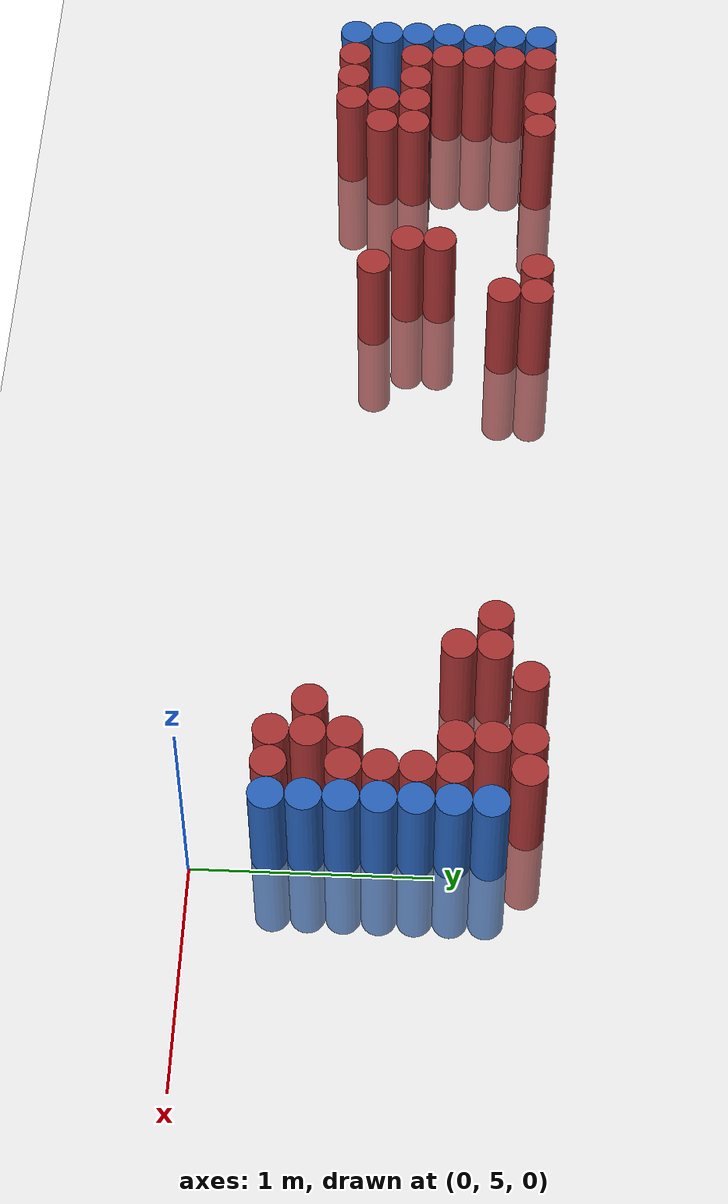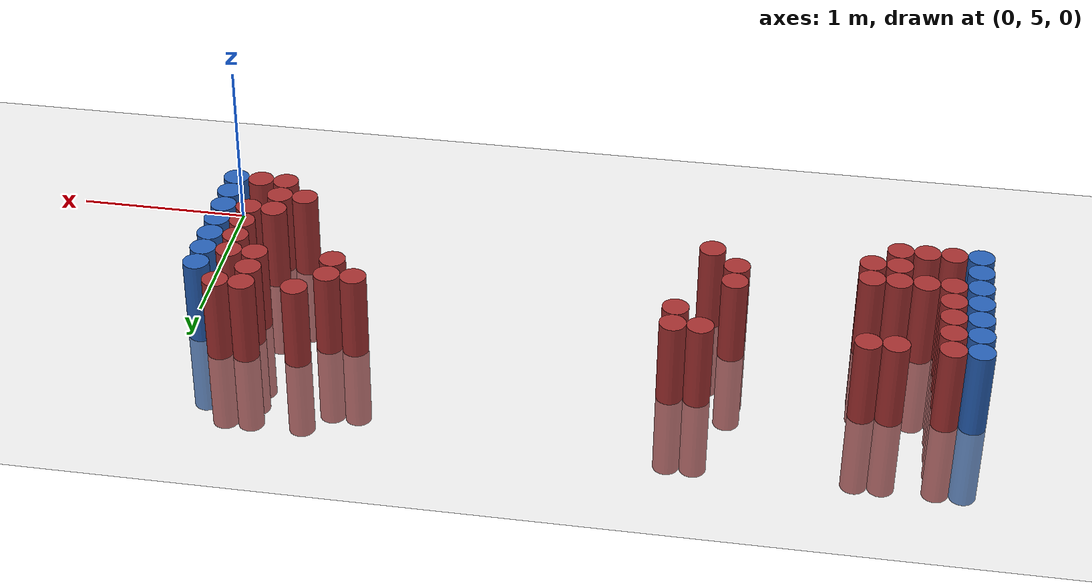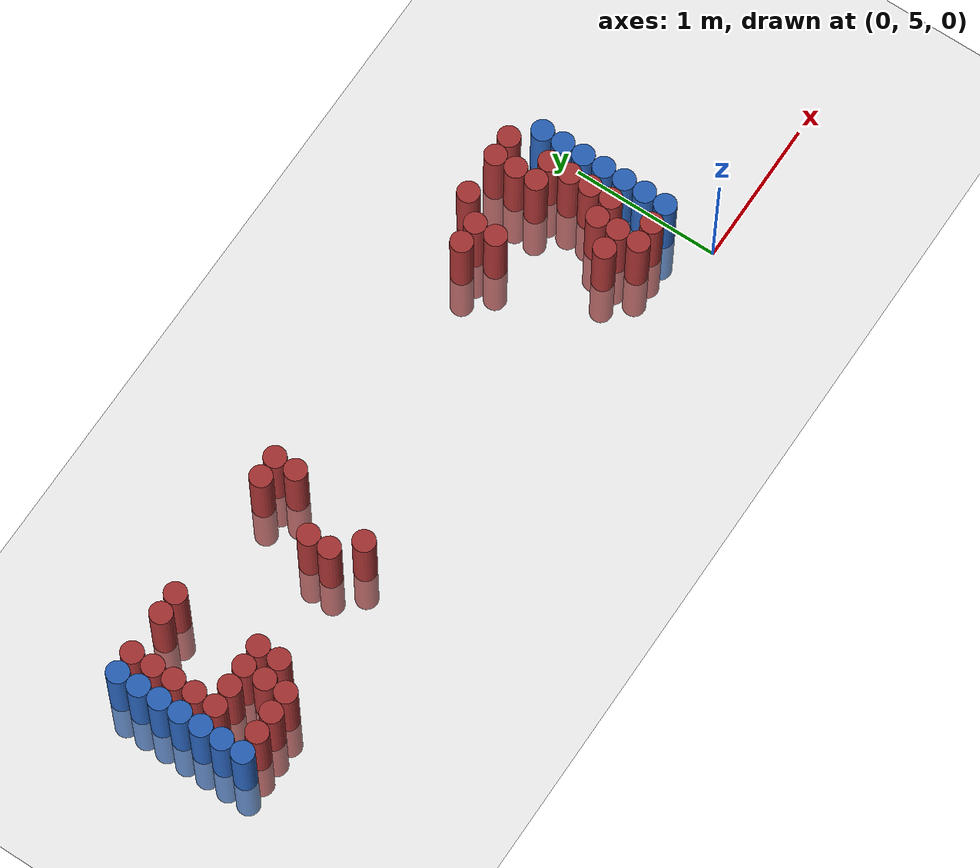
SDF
<sdf version="1.6">
 <world name="default">
  <model name="ground_plane">
   <static>1</static>
   <link name="link">
    <collision name="collision">
     <geometry><plane><normal>0 0 1</normal><size>100 100</size></plane></geometry>
     <surface><friction><ode><mu>100</mu><mu2>50</mu2></ode></friction></surface>
    </collision>
    <visual name="visual">
     <cast_shadows>0</cast_shadows>
     <geometry><plane><normal>0 0 1</normal><size>100 100</size></plane></geometry>
     <material>
      <script><uri>file://media/materials/scripts/gazebo.material</uri><name>Gazebo/Grey</name></script>
     </material>
    </visual>
   </link>
  </model>
  <model name="unit_cylinder_98">
   <static>1</static>
   <pose>-4.425000 5.475000 0.000000 0.000000 0.000000 0.000000</pose>
   <link name="link">
    <inertial>
     <mass>1</mass>
     <inertia><ixx>0.145833</ixx><ixy>0</ixy><ixz>0</ixz><iyy>0.145833</iyy><iyz>0</iyz><izz>0.125</izz></inertia>
    </inertial>
    <collision name="collision">
     <geometry><cylinder><radius>0.075000</radius><length>1</length></cylinder></geometry>
    </collision>
    <visual name="visual">
     <geometry><cylinder><radius>0.075000</radius><length>1</length></cylinder></geometry>
     <material>
      <ambient>0.152000 0.379000 0.720000 1</ambient>
      <diffuse>0.152000 0.379000 0.720000 1</diffuse>
     </material>
     <material>
      <script><name>Gazebo/Grey</name><uri>file://media/materials/scripts/gazebo.material</uri></script>
     </material>
    </visual>
   </link>
  </model>
  <model name="unit_cylinder_99">
   <static>1</static>
   <pose>-4.425000 5.625000 0.000000 0.000000 0.000000 0.000000</pose>
   <link name="link">
    <inertial>
     <mass>1</mass>
     <inertia><ixx>0.145833</ixx><ixy>0</ixy><ixz>0</ixz><iyy>0.145833</iyy><iyz>0</iyz><izz>0.125</izz></inertia>
    </inertial>
    <collision name="collision">
     <geometry><cylinder><radius>0.075000</radius><length>1</length></cylinder></geometry>
    </collision>
    <visual name="visual">
     <geometry><cylinder><radius>0.075000</radius><length>1</length></cylinder></geometry>
     <material>
      <ambient>0.152000 0.379000 0.720000 1</ambient>
      <diffuse>0.152000 0.379000 0.720000 1</diffuse>
     </material>
     <material>
      <script><name>Gazebo/Grey</name><uri>file://media/materials/scripts/gazebo.material</uri></script>
     </material>
    </visual>
   </link>
  </model>
  <model name="unit_cylinder_100">
   <static>1</static>
   <pose>-4.425000 5.775000 0.000000 0.000000 0.000000 0.000000</pose>
   <link name="link">
    <inertial>
     <mass>1</mass>
     <inertia><ixx>0.145833</ixx><ixy>0</ixy><ixz>0</ixz><iyy>0.145833</iyy><iyz>0</iyz><izz>0.125</izz></inertia>
    </inertial>
    <collision name="collision">
     <geometry><cylinder><radius>0.075000</radius><length>1</length></cylinder></geometry>
    </collision>
    <visual name="visual">
     <geometry><cylinder><radius>0.075000</radius><length>1</length></cylinder></geometry>
     <material>
      <ambient>0.152000 0.379000 0.720000 1</ambient>
      <diffuse>0.152000 0.379000 0.720000 1</diffuse>
     </material>
     <material>
      <script><name>Gazebo/Grey</name><uri>file://media/materials/scripts/gazebo.material</uri></script>
     </material>
    </visual>
   </link>
  </model>
  <model name="unit_cylinder_101">
   <static>1</static>
   <pose>-4.425000 5.925000 0.000000 0.000000 0.000000 0.000000</pose>
   <link name="link">
    <inertial>
     <mass>1</mass>
     <inertia><ixx>0.145833</ixx><ixy>0</ixy><ixz>0</ixz><iyy>0.145833</iyy><iyz>0</iyz><izz>0.125</izz></inertia>
    </inertial>
    <collision name="collision">
     <geometry><cylinder><radius>0.075000</radius><length>1</length></cylinder></geometry>
    </collision>
    <visual name="visual">
     <geometry><cylinder><radius>0.075000</radius><length>1</length></cylinder></geometry>
     <material>
      <ambient>0.152000 0.379000 0.720000 1</ambient>
      <diffuse>0.152000 0.379000 0.720000 1</diffuse>
     </material>
     <material>
      <script><name>Gazebo/Grey</name><uri>file://media/materials/scripts/gazebo.material</uri></script>
     </material>
    </visual>
   </link>
  </model>
  <model name="unit_cylinder_102">
   <static>1</static>
   <pose>-4.425000 6.075000 0.000000 0.000000 0.000000 0.000000</pose>
   <link name="link">
    <inertial>
     <mass>1</mass>
     <inertia><ixx>0.145833</ixx><ixy>0</ixy><ixz>0</ixz><iyy>0.145833</iyy><iyz>0</iyz><izz>0.125</izz></inertia>
    </inertial>
    <collision name="collision">
     <geometry><cylinder><radius>0.075000</radius><length>1</length></cylinder></geometry>
    </collision>
    <visual name="visual">
     <geometry><cylinder><radius>0.075000</radius><length>1</length></cylinder></geometry>
     <material>
      <ambient>0.152000 0.379000 0.720000 1</ambient>
      <diffuse>0.152000 0.379000 0.720000 1</diffuse>
     </material>
     <material>
      <script><name>Gazebo/Grey</name><uri>file://media/materials/scripts/gazebo.material</uri></script>
     </material>
    </visual>
   </link>
  </model>
  <model name="unit_cylinder_103">
   <static>1</static>
   <pose>-4.425000 6.225000 0.000000 0.000000 0.000000 0.000000</pose>
   <link name="link">
    <inertial>
     <mass>1</mass>
     <inertia><ixx>0.145833</ixx><ixy>0</ixy><ixz>0</ixz><iyy>0.145833</iyy><iyz>0</iyz><izz>0.125</izz></inertia>
    </inertial>
    <collision name="collision">
     <geometry><cylinder><radius>0.075000</radius><length>1</length></cylinder></geometry>
    </collision>
    <visual name="visual">
     <geometry><cylinder><radius>0.075000</radius><length>1</length></cylinder></geometry>
     <material>
      <ambient>0.152000 0.379000 0.720000 1</ambient>
      <diffuse>0.152000 0.379000 0.720000 1</diffuse>
     </material>
     <material>
      <script><name>Gazebo/Grey</name><uri>file://media/materials/scripts/gazebo.material</uri></script>
     </material>
    </visual>
   </link>
  </model>
  <model name="unit_cylinder_104">
   <static>1</static>
   <pose>-4.425000 6.375000 0.000000 0.000000 0.000000 0.000000</pose>
   <link name="link">
    <inertial>
     <mass>1</mass>
     <inertia><ixx>0.145833</ixx><ixy>0</ixy><ixz>0</ixz><iyy>0.145833</iyy><iyz>0</iyz><izz>0.125</izz></inertia>
    </inertial>
    <collision name="collision">
     <geometry><cylinder><radius>0.075000</radius><length>1</length></cylinder></geometry>
    </collision>
    <visual name="visual">
     <geometry><cylinder><radius>0.075000</radius><length>1</length></cylinder></geometry>
     <material>
      <ambient>0.152000 0.379000 0.720000 1</ambient>
      <diffuse>0.152000 0.379000 0.720000 1</diffuse>
     </material>
     <material>
      <script><name>Gazebo/Grey</name><uri>file://media/materials/scripts/gazebo.material</uri></script>
     </material>
    </visual>
   </link>
  </model>
  <model name="unit_cylinder_127">
   <static>1</static>
   <pose>-4.275000 5.475000 0.000000 0.000000 0.000000 0.000000</pose>
   <link name="link">
    <inertial>
     <mass>1</mass>
     <inertia><ixx>0.145833</ixx><ixy>0</ixy><ixz>0</ixz><iyy>0.145833</iyy><iyz>0</iyz><izz>0.125</izz></inertia>
    </inertial>
    <collision name="collision">
     <geometry><cylinder><radius>0.075000</radius><length>1</length></cylinder></geometry>
    </collision>
    <visual name="visual">
     <geometry><cylinder><radius>0.075000</radius><length>1</length></cylinder></geometry>
     <material>
      <ambient>0.648000 0.192000 0.192000 1</ambient>
      <diffuse>0.648000 0.192000 0.192000 1</diffuse>
     </material>
     <material>
      <script><name>Gazebo/Grey</name><uri>file://media/materials/scripts/gazebo.material</uri></script>
     </material>
    </visual>
   </link>
  </model>
  <model name="unit_cylinder_128">
   <static>1</static>
   <pose>-4.275000 5.775000 0.000000 0.000000 0.000000 0.000000</pose>
   <link name="link">
    <inertial>
     <mass>1</mass>
     <inertia><ixx>0.145833</ixx><ixy>0</ixy><ixz>0</ixz><iyy>0.145833</iyy><iyz>0</iyz><izz>0.125</izz></inertia>
    </inertial>
    <collision name="collision">
     <geometry><cylinder><radius>0.075000</radius><length>1</length></cylinder></geometry>
    </collision>
    <visual name="visual">
     <geometry><cylinder><radius>0.075000</radius><length>1</length></cylinder></geometry>
     <material>
      <ambient>0.648000 0.192000 0.192000 1</ambient>
      <diffuse>0.648000 0.192000 0.192000 1</diffuse>
     </material>
     <material>
      <script><name>Gazebo/Grey</name><uri>file://media/materials/scripts/gazebo.material</uri></script>
     </material>
    </visual>
   </link>
  </model>
  <model name="unit_cylinder_129">
   <static>1</static>
   <pose>-4.275000 5.925000 0.000000 0.000000 0.000000 0.000000</pose>
   <link name="link">
    <inertial>
     <mass>1</mass>
     <inertia><ixx>0.145833</ixx><ixy>0</ixy><ixz>0</ixz><iyy>0.145833</iyy><iyz>0</iyz><izz>0.125</izz></inertia>
    </inertial>
    <collision name="collision">
     <geometry><cylinder><radius>0.075000</radius><length>1</length></cylinder></geometry>
    </collision>
    <visual name="visual">
     <geometry><cylinder><radius>0.075000</radius><length>1</length></cylinder></geometry>
     <material>
      <ambient>0.648000 0.192000 0.192000 1</ambient>
      <diffuse>0.648000 0.192000 0.192000 1</diffuse>
     </material>
     <material>
      <script><name>Gazebo/Grey</name><uri>file://media/materials/scripts/gazebo.material</uri></script>
     </material>
    </visual>
   </link>
  </model>
  <model name="unit_cylinder_130">
   <static>1</static>
   <pose>-4.275000 6.075000 0.000000 0.000000 0.000000 0.000000</pose>
   <link name="link">
    <inertial>
     <mass>1</mass>
     <inertia><ixx>0.145833</ixx><ixy>0</ixy><ixz>0</ixz><iyy>0.145833</iyy><iyz>0</iyz><izz>0.125</izz></inertia>
    </inertial>
    <collision name="collision">
     <geometry><cylinder><radius>0.075000</radius><length>1</length></cylinder></geometry>
    </collision>
    <visual name="visual">
     <geometry><cylinder><radius>0.075000</radius><length>1</length></cylinder></geometry>
     <material>
      <ambient>0.648000 0.192000 0.192000 1</ambient>
      <diffuse>0.648000 0.192000 0.192000 1</diffuse>
     </material>
     <material>
      <script><name>Gazebo/Grey</name><uri>file://media/materials/scripts/gazebo.material</uri></script>
     </material>
    </visual>
   </link>
  </model>
  <model name="unit_cylinder_131">
   <static>1</static>
   <pose>-4.275000 6.225000 0.000000 0.000000 0.000000 0.000000</pose>
   <link name="link">
    <inertial>
     <mass>1</mass>
     <inertia><ixx>0.145833</ixx><ixy>0</ixy><ixz>0</ixz><iyy>0.145833</iyy><iyz>0</iyz><izz>0.125</izz></inertia>
    </inertial>
    <collision name="collision">
     <geometry><cylinder><radius>0.075000</radius><length>1</length></cylinder></geometry>
    </collision>
    <visual name="visual">
     <geometry><cylinder><radius>0.075000</radius><length>1</length></cylinder></geometry>
     <material>
      <ambient>0.648000 0.192000 0.192000 1</ambient>
      <diffuse>0.648000 0.192000 0.192000 1</diffuse>
     </material>
     <material>
      <script><name>Gazebo/Grey</name><uri>file://media/materials/scripts/gazebo.material</uri></script>
     </material>
    </visual>
   </link>
  </model>
  <model name="unit_cylinder_132">
   <static>1</static>
   <pose>-4.275000 6.375000 0.000000 0.000000 0.000000 0.000000</pose>
   <link name="link">
    <inertial>
     <mass>1</mass>
     <inertia><ixx>0.145833</ixx><ixy>0</ixy><ixz>0</ixz><iyy>0.145833</iyy><iyz>0</iyz><izz>0.125</izz></inertia>
    </inertial>
    <collision name="collision">
     <geometry><cylinder><radius>0.075000</radius><length>1</length></cylinder></geometry>
    </collision>
    <visual name="visual">
     <geometry><cylinder><radius>0.075000</radius><length>1</length></cylinder></geometry>
     <material>
      <ambient>0.648000 0.192000 0.192000 1</ambient>
      <diffuse>0.648000 0.192000 0.192000 1</diffuse>
     </material>
     <material>
      <script><name>Gazebo/Grey</name><uri>file://media/materials/scripts/gazebo.material</uri></script>
     </material>
    </visual>
   </link>
  </model>
  <model name="unit_cylinder_143">
   <static>1</static>
   <pose>-4.125000 5.475000 0.000000 0.000000 0.000000 0.000000</pose>
   <link name="link">
    <inertial>
     <mass>1</mass>
     <inertia><ixx>0.145833</ixx><ixy>0</ixy><ixz>0</ixz><iyy>0.145833</iyy><iyz>0</iyz><izz>0.125</izz></inertia>
    </inertial>
    <collision name="collision">
     <geometry><cylinder><radius>0.075000</radius><length>1</length></cylinder></geometry>
    </collision>
    <visual name="visual">
     <geometry><cylinder><radius>0.075000</radius><length>1</length></cylinder></geometry>
     <material>
      <ambient>0.648000 0.192000 0.192000 1</ambient>
      <diffuse>0.648000 0.192000 0.192000 1</diffuse>
     </material>
     <material>
      <script><name>Gazebo/Grey</name><uri>file://media/materials/scripts/gazebo.material</uri></script>
     </material>
    </visual>
   </link>
  </model>
  <model name="unit_cylinder_144">
   <static>1</static>
   <pose>-4.125000 5.775000 0.000000 0.000000 0.000000 0.000000</pose>
   <link name="link">
    <inertial>
     <mass>1</mass>
     <inertia><ixx>0.145833</ixx><ixy>0</ixy><ixz>0</ixz><iyy>0.145833</iyy><iyz>0</iyz><izz>0.125</izz></inertia>
    </inertial>
    <collision name="collision">
     <geometry><cylinder><radius>0.075000</radius><length>1</length></cylinder></geometry>
    </collision>
    <visual name="visual">
     <geometry><cylinder><radius>0.075000</radius><length>1</length></cylinder></geometry>
     <material>
      <ambient>0.648000 0.192000 0.192000 1</ambient>
      <diffuse>0.648000 0.192000 0.192000 1</diffuse>
     </material>
     <material>
      <script><name>Gazebo/Grey</name><uri>file://media/materials/scripts/gazebo.material</uri></script>
     </material>
    </visual>
   </link>
  </model>
  <model name="unit_cylinder_153">
   <static>1</static>
   <pose>-3.975000 5.475000 0.000000 0.000000 0.000000 0.000000</pose>
   <link name="link">
    <inertial>
     <mass>1</mass>
     <inertia><ixx>0.145833</ixx><ixy>0</ixy><ixz>0</ixz><iyy>0.145833</iyy><iyz>0</iyz><izz>0.125</izz></inertia>
    </inertial>
    <collision name="collision">
     <geometry><cylinder><radius>0.075000</radius><length>1</length></cylinder></geometry>
    </collision>
    <visual name="visual">
     <geometry><cylinder><radius>0.075000</radius><length>1</length></cylinder></geometry>
     <material>
      <ambient>0.648000 0.192000 0.192000 1</ambient>
      <diffuse>0.648000 0.192000 0.192000 1</diffuse>
     </material>
     <material>
      <script><name>Gazebo/Grey</name><uri>file://media/materials/scripts/gazebo.material</uri></script>
     </material>
    </visual>
   </link>
  </model>
  <model name="unit_cylinder_154">
   <static>1</static>
   <pose>-3.975000 5.625000 0.000000 0.000000 0.000000 0.000000</pose>
   <link name="link">
    <inertial>
     <mass>1</mass>
     <inertia><ixx>0.145833</ixx><ixy>0</ixy><ixz>0</ixz><iyy>0.145833</iyy><iyz>0</iyz><izz>0.125</izz></inertia>
    </inertial>
    <collision name="collision">
     <geometry><cylinder><radius>0.075000</radius><length>1</length></cylinder></geometry>
    </collision>
    <visual name="visual">
     <geometry><cylinder><radius>0.075000</radius><length>1</length></cylinder></geometry>
     <material>
      <ambient>0.648000 0.192000 0.192000 1</ambient>
      <diffuse>0.648000 0.192000 0.192000 1</diffuse>
     </material>
     <material>
      <script><name>Gazebo/Grey</name><uri>file://media/materials/scripts/gazebo.material</uri></script>
     </material>
    </visual>
   </link>
  </model>
  <model name="unit_cylinder_155">
   <static>1</static>
   <pose>-3.975000 5.775000 0.000000 0.000000 0.000000 0.000000</pose>
   <link name="link">
    <inertial>
     <mass>1</mass>
     <inertia><ixx>0.145833</ixx><ixy>0</ixy><ixz>0</ixz><iyy>0.145833</iyy><iyz>0</iyz><izz>0.125</izz></inertia>
    </inertial>
    <collision name="collision">
     <geometry><cylinder><radius>0.075000</radius><length>1</length></cylinder></geometry>
    </collision>
    <visual name="visual">
     <geometry><cylinder><radius>0.075000</radius><length>1</length></cylinder></geometry>
     <material>
      <ambient>0.648000 0.192000 0.192000 1</ambient>
      <diffuse>0.648000 0.192000 0.192000 1</diffuse>
     </material>
     <material>
      <script><name>Gazebo/Grey</name><uri>file://media/materials/scripts/gazebo.material</uri></script>
     </material>
    </visual>
   </link>
  </model>
  <model name="unit_cylinder_156">
   <static>1</static>
   <pose>-3.975000 6.375000 0.000000 0.000000 0.000000 0.000000</pose>
   <link name="link">
    <inertial>
     <mass>1</mass>
     <inertia><ixx>0.145833</ixx><ixy>0</ixy><ixz>0</ixz><iyy>0.145833</iyy><iyz>0</iyz><izz>0.125</izz></inertia>
    </inertial>
    <collision name="collision">
     <geometry><cylinder><radius>0.075000</radius><length>1</length></cylinder></geometry>
    </collision>
    <visual name="visual">
     <geometry><cylinder><radius>0.075000</radius><length>1</length></cylinder></geometry>
     <material>
      <ambient>0.648000 0.192000 0.192000 1</ambient>
      <diffuse>0.648000 0.192000 0.192000 1</diffuse>
     </material>
     <material>
      <script><name>Gazebo/Grey</name><uri>file://media/materials/scripts/gazebo.material</uri></script>
     </material>
    </visual>
   </link>
  </model>
  <model name="unit_cylinder_163">
   <static>1</static>
   <pose>-3.825000 5.625000 0.000000 0.000000 0.000000 0.000000</pose>
   <link name="link">
    <inertial>
     <mass>1</mass>
     <inertia><ixx>0.145833</ixx><ixy>0</ixy><ixz>0</ixz><iyy>0.145833</iyy><iyz>0</iyz><izz>0.125</izz></inertia>
    </inertial>
    <collision name="collision">
     <geometry><cylinder><radius>0.075000</radius><length>1</length></cylinder></geometry>
    </collision>
    <visual name="visual">
     <geometry><cylinder><radius>0.075000</radius><length>1</length></cylinder></geometry>
     <material>
      <ambient>0.648000 0.192000 0.192000 1</ambient>
      <diffuse>0.648000 0.192000 0.192000 1</diffuse>
     </material>
     <material>
      <script><name>Gazebo/Grey</name><uri>file://media/materials/scripts/gazebo.material</uri></script>
     </material>
    </visual>
   </link>
  </model>
  <model name="unit_cylinder_164">
   <static>1</static>
   <pose>-3.825000 5.775000 0.000000 0.000000 0.000000 0.000000</pose>
   <link name="link">
    <inertial>
     <mass>1</mass>
     <inertia><ixx>0.145833</ixx><ixy>0</ixy><ixz>0</ixz><iyy>0.145833</iyy><iyz>0</iyz><izz>0.125</izz></inertia>
    </inertial>
    <collision name="collision">
     <geometry><cylinder><radius>0.075000</radius><length>1</length></cylinder></geometry>
    </collision>
    <visual name="visual">
     <geometry><cylinder><radius>0.075000</radius><length>1</length></cylinder></geometry>
     <material>
      <ambient>0.648000 0.192000 0.192000 1</ambient>
      <diffuse>0.648000 0.192000 0.192000 1</diffuse>
     </material>
     <material>
      <script><name>Gazebo/Grey</name><uri>file://media/materials/scripts/gazebo.material</uri></script>
     </material>
    </visual>
   </link>
  </model>
  <model name="unit_cylinder_165">
   <static>1</static>
   <pose>-3.825000 6.375000 0.000000 0.000000 0.000000 0.000000</pose>
   <link name="link">
    <inertial>
     <mass>1</mass>
     <inertia><ixx>0.145833</ixx><ixy>0</ixy><ixz>0</ixz><iyy>0.145833</iyy><iyz>0</iyz><izz>0.125</izz></inertia>
    </inertial>
    <collision name="collision">
     <geometry><cylinder><radius>0.075000</radius><length>1</length></cylinder></geometry>
    </collision>
    <visual name="visual">
     <geometry><cylinder><radius>0.075000</radius><length>1</length></cylinder></geometry>
     <material>
      <ambient>0.648000 0.192000 0.192000 1</ambient>
      <diffuse>0.648000 0.192000 0.192000 1</diffuse>
     </material>
     <material>
      <script><name>Gazebo/Grey</name><uri>file://media/materials/scripts/gazebo.material</uri></script>
     </material>
    </visual>
   </link>
  </model>
  <model name="unit_cylinder_198">
   <static>1</static>
   <pose>-3.075000 5.775000 0.000000 0.000000 0.000000 0.000000</pose>
   <link name="link">
    <inertial>
     <mass>1</mass>
     <inertia><ixx>0.145833</ixx><ixy>0</ixy><ixz>0</ixz><iyy>0.145833</iyy><iyz>0</iyz><izz>0.125</izz></inertia>
    </inertial>
    <collision name="collision">
     <geometry><cylinder><radius>0.075000</radius><length>1</length></cylinder></geometry>
    </collision>
    <visual name="visual">
     <geometry><cylinder><radius>0.075000</radius><length>1</length></cylinder></geometry>
     <material>
      <ambient>0.648000 0.192000 0.192000 1</ambient>
      <diffuse>0.648000 0.192000 0.192000 1</diffuse>
     </material>
     <material>
      <script><name>Gazebo/Grey</name><uri>file://media/materials/scripts/gazebo.material</uri></script>
     </material>
    </visual>
   </link>
  </model>
  <model name="unit_cylinder_199">
   <static>1</static>
   <pose>-3.075000 5.925000 0.000000 0.000000 0.000000 0.000000</pose>
   <link name="link">
    <inertial>
     <mass>1</mass>
     <inertia><ixx>0.145833</ixx><ixy>0</ixy><ixz>0</ixz><iyy>0.145833</iyy><iyz>0</iyz><izz>0.125</izz></inertia>
    </inertial>
    <collision name="collision">
     <geometry><cylinder><radius>0.075000</radius><length>1</length></cylinder></geometry>
    </collision>
    <visual name="visual">
     <geometry><cylinder><radius>0.075000</radius><length>1</length></cylinder></geometry>
     <material>
      <ambient>0.648000 0.192000 0.192000 1</ambient>
      <diffuse>0.648000 0.192000 0.192000 1</diffuse>
     </material>
     <material>
      <script><name>Gazebo/Grey</name><uri>file://media/materials/scripts/gazebo.material</uri></script>
     </material>
    </visual>
   </link>
  </model>
  <model name="unit_cylinder_205">
   <static>1</static>
   <pose>-2.925000 5.625000 0.000000 0.000000 0.000000 0.000000</pose>
   <link name="link">
    <inertial>
     <mass>1</mass>
     <inertia><ixx>0.145833</ixx><ixy>0</ixy><ixz>0</ixz><iyy>0.145833</iyy><iyz>0</iyz><izz>0.125</izz></inertia>
    </inertial>
    <collision name="collision">
     <geometry><cylinder><radius>0.075000</radius><length>1</length></cylinder></geometry>
    </collision>
    <visual name="visual">
     <geometry><cylinder><radius>0.075000</radius><length>1</length></cylinder></geometry>
     <material>
      <ambient>0.648000 0.192000 0.192000 1</ambient>
      <diffuse>0.648000 0.192000 0.192000 1</diffuse>
     </material>
     <material>
      <script><name>Gazebo/Grey</name><uri>file://media/materials/scripts/gazebo.material</uri></script>
     </material>
    </visual>
   </link>
  </model>
  <model name="unit_cylinder_206">
   <static>1</static>
   <pose>-2.925000 6.375000 0.000000 0.000000 0.000000 0.000000</pose>
   <link name="link">
    <inertial>
     <mass>1</mass>
     <inertia><ixx>0.145833</ixx><ixy>0</ixy><ixz>0</ixz><iyy>0.145833</iyy><iyz>0</iyz><izz>0.125</izz></inertia>
    </inertial>
    <collision name="collision">
     <geometry><cylinder><radius>0.075000</radius><length>1</length></cylinder></geometry>
    </collision>
    <visual name="visual">
     <geometry><cylinder><radius>0.075000</radius><length>1</length></cylinder></geometry>
     <material>
      <ambient>0.648000 0.192000 0.192000 1</ambient>
      <diffuse>0.648000 0.192000 0.192000 1</diffuse>
     </material>
     <material>
      <script><name>Gazebo/Grey</name><uri>file://media/materials/scripts/gazebo.material</uri></script>
     </material>
    </visual>
   </link>
  </model>
  <model name="unit_cylinder_209">
   <static>1</static>
   <pose>-2.775000 6.225000 0.000000 0.000000 0.000000 0.000000</pose>
   <link name="link">
    <inertial>
     <mass>1</mass>
     <inertia><ixx>0.145833</ixx><ixy>0</ixy><ixz>0</ixz><iyy>0.145833</iyy><iyz>0</iyz><izz>0.125</izz></inertia>
    </inertial>
    <collision name="collision">
     <geometry><cylinder><radius>0.075000</radius><length>1</length></cylinder></geometry>
    </collision>
    <visual name="visual">
     <geometry><cylinder><radius>0.075000</radius><length>1</length></cylinder></geometry>
     <material>
      <ambient>0.648000 0.192000 0.192000 1</ambient>
      <diffuse>0.648000 0.192000 0.192000 1</diffuse>
     </material>
     <material>
      <script><name>Gazebo/Grey</name><uri>file://media/materials/scripts/gazebo.material</uri></script>
     </material>
    </visual>
   </link>
  </model>
  <model name="unit_cylinder_210">
   <static>1</static>
   <pose>-2.775000 6.375000 0.000000 0.000000 0.000000 0.000000</pose>
   <link name="link">
    <inertial>
     <mass>1</mass>
     <inertia><ixx>0.145833</ixx><ixy>0</ixy><ixz>0</ixz><iyy>0.145833</iyy><iyz>0</iyz><izz>0.125</izz></inertia>
    </inertial>
    <collision name="collision">
     <geometry><cylinder><radius>0.075000</radius><length>1</length></cylinder></geometry>
    </collision>
    <visual name="visual">
     <geometry><cylinder><radius>0.075000</radius><length>1</length></cylinder></geometry>
     <material>
      <ambient>0.648000 0.192000 0.192000 1</ambient>
      <diffuse>0.648000 0.192000 0.192000 1</diffuse>
     </material>
     <material>
      <script><name>Gazebo/Grey</name><uri>file://media/materials/scripts/gazebo.material</uri></script>
     </material>
    </visual>
   </link>
  </model>
  <model name="unit_cylinder_234">
   <static>1</static>
   <pose>-0.975000 6.225000 0.000000 0.000000 0.000000 0.000000</pose>
   <link name="link">
    <inertial>
     <mass>1</mass>
     <inertia><ixx>0.145833</ixx><ixy>0</ixy><ixz>0</ixz><iyy>0.145833</iyy><iyz>0</iyz><izz>0.125</izz></inertia>
    </inertial>
    <collision name="collision">
     <geometry><cylinder><radius>0.075000</radius><length>1</length></cylinder></geometry>
    </collision>
    <visual name="visual">
     <geometry><cylinder><radius>0.075000</radius><length>1</length></cylinder></geometry>
     <material>
      <ambient>0.648000 0.192000 0.192000 1</ambient>
      <diffuse>0.648000 0.192000 0.192000 1</diffuse>
     </material>
     <material>
      <script><name>Gazebo/Grey</name><uri>file://media/materials/scripts/gazebo.material</uri></script>
     </material>
    </visual>
   </link>
  </model>
  <model name="unit_cylinder_236">
   <static>1</static>
   <pose>-0.825000 6.075000 0.000000 0.000000 0.000000 0.000000</pose>
   <link name="link">
    <inertial>
     <mass>1</mass>
     <inertia><ixx>0.145833</ixx><ixy>0</ixy><ixz>0</ixz><iyy>0.145833</iyy><iyz>0</iyz><izz>0.125</izz></inertia>
    </inertial>
    <collision name="collision">
     <geometry><cylinder><radius>0.075000</radius><length>1</length></cylinder></geometry>
    </collision>
    <visual name="visual">
     <geometry><cylinder><radius>0.075000</radius><length>1</length></cylinder></geometry>
     <material>
      <ambient>0.648000 0.192000 0.192000 1</ambient>
      <diffuse>0.648000 0.192000 0.192000 1</diffuse>
     </material>
     <material>
      <script><name>Gazebo/Grey</name><uri>file://media/materials/scripts/gazebo.material</uri></script>
     </material>
    </visual>
   </link>
  </model>
  <model name="unit_cylinder_237">
   <static>1</static>
   <pose>-0.825000 6.225000 0.000000 0.000000 0.000000 0.000000</pose>
   <link name="link">
    <inertial>
     <mass>1</mass>
     <inertia><ixx>0.145833</ixx><ixy>0</ixy><ixz>0</ixz><iyy>0.145833</iyy><iyz>0</iyz><izz>0.125</izz></inertia>
    </inertial>
    <collision name="collision">
     <geometry><cylinder><radius>0.075000</radius><length>1</length></cylinder></geometry>
    </collision>
    <visual name="visual">
     <geometry><cylinder><radius>0.075000</radius><length>1</length></cylinder></geometry>
     <material>
      <ambient>0.648000 0.192000 0.192000 1</ambient>
      <diffuse>0.648000 0.192000 0.192000 1</diffuse>
     </material>
     <material>
      <script><name>Gazebo/Grey</name><uri>file://media/materials/scripts/gazebo.material</uri></script>
     </material>
    </visual>
   </link>
  </model>
  <model name="unit_cylinder_238">
   <static>1</static>
   <pose>-0.675000 6.375000 0.000000 0.000000 0.000000 0.000000</pose>
   <link name="link">
    <inertial>
     <mass>1</mass>
     <inertia><ixx>0.145833</ixx><ixy>0</ixy><ixz>0</ixz><iyy>0.145833</iyy><iyz>0</iyz><izz>0.125</izz></inertia>
    </inertial>
    <collision name="collision">
     <geometry><cylinder><radius>0.075000</radius><length>1</length></cylinder></geometry>
    </collision>
    <visual name="visual">
     <geometry><cylinder><radius>0.075000</radius><length>1</length></cylinder></geometry>
     <material>
      <ambient>0.648000 0.192000 0.192000 1</ambient>
      <diffuse>0.648000 0.192000 0.192000 1</diffuse>
     </material>
     <material>
      <script><name>Gazebo/Grey</name><uri>file://media/materials/scripts/gazebo.material</uri></script>
     </material>
    </visual>
   </link>
  </model>
  <model name="unit_cylinder_240">
   <static>1</static>
   <pose>-0.525000 5.475000 0.000000 0.000000 0.000000 0.000000</pose>
   <link name="link">
    <inertial>
     <mass>1</mass>
     <inertia><ixx>0.145833</ixx><ixy>0</ixy><ixz>0</ixz><iyy>0.145833</iyy><iyz>0</iyz><izz>0.125</izz></inertia>
    </inertial>
    <collision name="collision">
     <geometry><cylinder><radius>0.075000</radius><length>1</length></cylinder></geometry>
    </collision>
    <visual name="visual">
     <geometry><cylinder><radius>0.075000</radius><length>1</length></cylinder></geometry>
     <material>
      <ambient>0.648000 0.192000 0.192000 1</ambient>
      <diffuse>0.648000 0.192000 0.192000 1</diffuse>
     </material>
     <material>
      <script><name>Gazebo/Grey</name><uri>file://media/materials/scripts/gazebo.material</uri></script>
     </material>
    </visual>
   </link>
  </model>
  <model name="unit_cylinder_247">
   <static>1</static>
   <pose>-0.375000 5.325000 0.000000 0.000000 0.000000 0.000000</pose>
   <link name="link">
    <inertial>
     <mass>1</mass>
     <inertia><ixx>0.145833</ixx><ixy>0</ixy><ixz>0</ixz><iyy>0.145833</iyy><iyz>0</iyz><izz>0.125</izz></inertia>
    </inertial>
    <collision name="collision">
     <geometry><cylinder><radius>0.075000</radius><length>1</length></cylinder></geometry>
    </collision>
    <visual name="visual">
     <geometry><cylinder><radius>0.075000</radius><length>1</length></cylinder></geometry>
     <material>
      <ambient>0.648000 0.192000 0.192000 1</ambient>
      <diffuse>0.648000 0.192000 0.192000 1</diffuse>
     </material>
     <material>
      <script><name>Gazebo/Grey</name><uri>file://media/materials/scripts/gazebo.material</uri></script>
     </material>
    </visual>
   </link>
  </model>
  <model name="unit_cylinder_248">
   <static>1</static>
   <pose>-0.375000 5.475000 0.000000 0.000000 0.000000 0.000000</pose>
   <link name="link">
    <inertial>
     <mass>1</mass>
     <inertia><ixx>0.145833</ixx><ixy>0</ixy><ixz>0</ixz><iyy>0.145833</iyy><iyz>0</iyz><izz>0.125</izz></inertia>
    </inertial>
    <collision name="collision">
     <geometry><cylinder><radius>0.075000</radius><length>1</length></cylinder></geometry>
    </collision>
    <visual name="visual">
     <geometry><cylinder><radius>0.075000</radius><length>1</length></cylinder></geometry>
     <material>
      <ambient>0.648000 0.192000 0.192000 1</ambient>
      <diffuse>0.648000 0.192000 0.192000 1</diffuse>
     </material>
     <material>
      <script><name>Gazebo/Grey</name><uri>file://media/materials/scripts/gazebo.material</uri></script>
     </material>
    </visual>
   </link>
  </model>
  <model name="unit_cylinder_249">
   <static>1</static>
   <pose>-0.375000 5.625000 0.000000 0.000000 0.000000 0.000000</pose>
   <link name="link">
    <inertial>
     <mass>1</mass>
     <inertia><ixx>0.145833</ixx><ixy>0</ixy><ixz>0</ixz><iyy>0.145833</iyy><iyz>0</iyz><izz>0.125</izz></inertia>
    </inertial>
    <collision name="collision">
     <geometry><cylinder><radius>0.075000</radius><length>1</length></cylinder></geometry>
    </collision>
    <visual name="visual">
     <geometry><cylinder><radius>0.075000</radius><length>1</length></cylinder></geometry>
     <material>
      <ambient>0.648000 0.192000 0.192000 1</ambient>
      <diffuse>0.648000 0.192000 0.192000 1</diffuse>
     </material>
     <material>
      <script><name>Gazebo/Grey</name><uri>file://media/materials/scripts/gazebo.material</uri></script>
     </material>
    </visual>
   </link>
  </model>
  <model name="unit_cylinder_250">
   <static>1</static>
   <pose>-0.375000 6.075000 0.000000 0.000000 0.000000 0.000000</pose>
   <link name="link">
    <inertial>
     <mass>1</mass>
     <inertia><ixx>0.145833</ixx><ixy>0</ixy><ixz>0</ixz><iyy>0.145833</iyy><iyz>0</iyz><izz>0.125</izz></inertia>
    </inertial>
    <collision name="collision">
     <geometry><cylinder><radius>0.075000</radius><length>1</length></cylinder></geometry>
    </collision>
    <visual name="visual">
     <geometry><cylinder><radius>0.075000</radius><length>1</length></cylinder></geometry>
     <material>
      <ambient>0.648000 0.192000 0.192000 1</ambient>
      <diffuse>0.648000 0.192000 0.192000 1</diffuse>
     </material>
     <material>
      <script><name>Gazebo/Grey</name><uri>file://media/materials/scripts/gazebo.material</uri></script>
     </material>
    </visual>
   </link>
  </model>
  <model name="unit_cylinder_251">
   <static>1</static>
   <pose>-0.375000 6.225000 0.000000 0.000000 0.000000 0.000000</pose>
   <link name="link">
    <inertial>
     <mass>1</mass>
     <inertia><ixx>0.145833</ixx><ixy>0</ixy><ixz>0</ixz><iyy>0.145833</iyy><iyz>0</iyz><izz>0.125</izz></inertia>
    </inertial>
    <collision name="collision">
     <geometry><cylinder><radius>0.075000</radius><length>1</length></cylinder></geometry>
    </collision>
    <visual name="visual">
     <geometry><cylinder><radius>0.075000</radius><length>1</length></cylinder></geometry>
     <material>
      <ambient>0.648000 0.192000 0.192000 1</ambient>
      <diffuse>0.648000 0.192000 0.192000 1</diffuse>
     </material>
     <material>
      <script><name>Gazebo/Grey</name><uri>file://media/materials/scripts/gazebo.material</uri></script>
     </material>
    </visual>
   </link>
  </model>
  <model name="unit_cylinder_252">
   <static>1</static>
   <pose>-0.375000 6.375000 0.000000 0.000000 0.000000 0.000000</pose>
   <link name="link">
    <inertial>
     <mass>1</mass>
     <inertia><ixx>0.145833</ixx><ixy>0</ixy><ixz>0</ixz><iyy>0.145833</iyy><iyz>0</iyz><izz>0.125</izz></inertia>
    </inertial>
    <collision name="collision">
     <geometry><cylinder><radius>0.075000</radius><length>1</length></cylinder></geometry>
    </collision>
    <visual name="visual">
     <geometry><cylinder><radius>0.075000</radius><length>1</length></cylinder></geometry>
     <material>
      <ambient>0.648000 0.192000 0.192000 1</ambient>
      <diffuse>0.648000 0.192000 0.192000 1</diffuse>
     </material>
     <material>
      <script><name>Gazebo/Grey</name><uri>file://media/materials/scripts/gazebo.material</uri></script>
     </material>
    </visual>
   </link>
  </model>
  <model name="unit_cylinder_263">
   <static>1</static>
   <pose>-0.225000 5.325000 0.000000 0.000000 0.000000 0.000000</pose>
   <link name="link">
    <inertial>
     <mass>1</mass>
     <inertia><ixx>0.145833</ixx><ixy>0</ixy><ixz>0</ixz><iyy>0.145833</iyy><iyz>0</iyz><izz>0.125</izz></inertia>
    </inertial>
    <collision name="collision">
     <geometry><cylinder><radius>0.075000</radius><length>1</length></cylinder></geometry>
    </collision>
    <visual name="visual">
     <geometry><cylinder><radius>0.075000</radius><length>1</length></cylinder></geometry>
     <material>
      <ambient>0.648000 0.192000 0.192000 1</ambient>
      <diffuse>0.648000 0.192000 0.192000 1</diffuse>
     </material>
     <material>
      <script><name>Gazebo/Grey</name><uri>file://media/materials/scripts/gazebo.material</uri></script>
     </material>
    </visual>
   </link>
  </model>
  <model name="unit_cylinder_264">
   <static>1</static>
   <pose>-0.225000 5.625000 0.000000 0.000000 0.000000 0.000000</pose>
   <link name="link">
    <inertial>
     <mass>1</mass>
     <inertia><ixx>0.145833</ixx><ixy>0</ixy><ixz>0</ixz><iyy>0.145833</iyy><iyz>0</iyz><izz>0.125</izz></inertia>
    </inertial>
    <collision name="collision">
     <geometry><cylinder><radius>0.075000</radius><length>1</length></cylinder></geometry>
    </collision>
    <visual name="visual">
     <geometry><cylinder><radius>0.075000</radius><length>1</length></cylinder></geometry>
     <material>
      <ambient>0.648000 0.192000 0.192000 1</ambient>
      <diffuse>0.648000 0.192000 0.192000 1</diffuse>
     </material>
     <material>
      <script><name>Gazebo/Grey</name><uri>file://media/materials/scripts/gazebo.material</uri></script>
     </material>
    </visual>
   </link>
  </model>
  <model name="unit_cylinder_265">
   <static>1</static>
   <pose>-0.225000 5.775000 0.000000 0.000000 0.000000 0.000000</pose>
   <link name="link">
    <inertial>
     <mass>1</mass>
     <inertia><ixx>0.145833</ixx><ixy>0</ixy><ixz>0</ixz><iyy>0.145833</iyy><iyz>0</iyz><izz>0.125</izz></inertia>
    </inertial>
    <collision name="collision">
     <geometry><cylinder><radius>0.075000</radius><length>1</length></cylinder></geometry>
    </collision>
    <visual name="visual">
     <geometry><cylinder><radius>0.075000</radius><length>1</length></cylinder></geometry>
     <material>
      <ambient>0.648000 0.192000 0.192000 1</ambient>
      <diffuse>0.648000 0.192000 0.192000 1</diffuse>
     </material>
     <material>
      <script><name>Gazebo/Grey</name><uri>file://media/materials/scripts/gazebo.material</uri></script>
     </material>
    </visual>
   </link>
  </model>
  <model name="unit_cylinder_266">
   <static>1</static>
   <pose>-0.225000 5.925000 0.000000 0.000000 0.000000 0.000000</pose>
   <link name="link">
    <inertial>
     <mass>1</mass>
     <inertia><ixx>0.145833</ixx><ixy>0</ixy><ixz>0</ixz><iyy>0.145833</iyy><iyz>0</iyz><izz>0.125</izz></inertia>
    </inertial>
    <collision name="collision">
     <geometry><cylinder><radius>0.075000</radius><length>1</length></cylinder></geometry>
    </collision>
    <visual name="visual">
     <geometry><cylinder><radius>0.075000</radius><length>1</length></cylinder></geometry>
     <material>
      <ambient>0.648000 0.192000 0.192000 1</ambient>
      <diffuse>0.648000 0.192000 0.192000 1</diffuse>
     </material>
     <material>
      <script><name>Gazebo/Grey</name><uri>file://media/materials/scripts/gazebo.material</uri></script>
     </material>
    </visual>
   </link>
  </model>
  <model name="unit_cylinder_267">
   <static>1</static>
   <pose>-0.225000 6.075000 0.000000 0.000000 0.000000 0.000000</pose>
   <link name="link">
    <inertial>
     <mass>1</mass>
     <inertia><ixx>0.145833</ixx><ixy>0</ixy><ixz>0</ixz><iyy>0.145833</iyy><iyz>0</iyz><izz>0.125</izz></inertia>
    </inertial>
    <collision name="collision">
     <geometry><cylinder><radius>0.075000</radius><length>1</length></cylinder></geometry>
    </collision>
    <visual name="visual">
     <geometry><cylinder><radius>0.075000</radius><length>1</length></cylinder></geometry>
     <material>
      <ambient>0.648000 0.192000 0.192000 1</ambient>
      <diffuse>0.648000 0.192000 0.192000 1</diffuse>
     </material>
     <material>
      <script><name>Gazebo/Grey</name><uri>file://media/materials/scripts/gazebo.material</uri></script>
     </material>
    </visual>
   </link>
  </model>
  <model name="unit_cylinder_268">
   <static>1</static>
   <pose>-0.225000 6.375000 0.000000 0.000000 0.000000 0.000000</pose>
   <link name="link">
    <inertial>
     <mass>1</mass>
     <inertia><ixx>0.145833</ixx><ixy>0</ixy><ixz>0</ixz><iyy>0.145833</iyy><iyz>0</iyz><izz>0.125</izz></inertia>
    </inertial>
    <collision name="collision">
     <geometry><cylinder><radius>0.075000</radius><length>1</length></cylinder></geometry>
    </collision>
    <visual name="visual">
     <geometry><cylinder><radius>0.075000</radius><length>1</length></cylinder></geometry>
     <material>
      <ambient>0.648000 0.192000 0.192000 1</ambient>
      <diffuse>0.648000 0.192000 0.192000 1</diffuse>
     </material>
     <material>
      <script><name>Gazebo/Grey</name><uri>file://media/materials/scripts/gazebo.material</uri></script>
     </material>
    </visual>
   </link>
  </model>
  <model name="unit_cylinder_282">
   <static>1</static>
   <pose>-0.075000 5.325000 0.000000 0.000000 0.000000 0.000000</pose>
   <link name="link">
    <inertial>
     <mass>1</mass>
     <inertia><ixx>0.145833</ixx><ixy>0</ixy><ixz>0</ixz><iyy>0.145833</iyy><iyz>0</iyz><izz>0.125</izz></inertia>
    </inertial>
    <collision name="collision">
     <geometry><cylinder><radius>0.075000</radius><length>1</length></cylinder></geometry>
    </collision>
    <visual name="visual">
     <geometry><cylinder><radius>0.075000</radius><length>1</length></cylinder></geometry>
     <material>
      <ambient>0.152000 0.379000 0.720000 1</ambient>
      <diffuse>0.152000 0.379000 0.720000 1</diffuse>
     </material>
     <material>
      <script><name>Gazebo/Grey</name><uri>file://media/materials/scripts/gazebo.material</uri></script>
     </material>
    </visual>
   </link>
  </model>
  <model name="unit_cylinder_283">
   <static>1</static>
   <pose>-0.075000 5.475000 0.000000 0.000000 0.000000 0.000000</pose>
   <link name="link">
    <inertial>
     <mass>1</mass>
     <inertia><ixx>0.145833</ixx><ixy>0</ixy><ixz>0</ixz><iyy>0.145833</iyy><iyz>0</iyz><izz>0.125</izz></inertia>
    </inertial>
    <collision name="collision">
     <geometry><cylinder><radius>0.075000</radius><length>1</length></cylinder></geometry>
    </collision>
    <visual name="visual">
     <geometry><cylinder><radius>0.075000</radius><length>1</length></cylinder></geometry>
     <material>
      <ambient>0.152000 0.379000 0.720000 1</ambient>
      <diffuse>0.152000 0.379000 0.720000 1</diffuse>
     </material>
     <material>
      <script><name>Gazebo/Grey</name><uri>file://media/materials/scripts/gazebo.material</uri></script>
     </material>
    </visual>
   </link>
  </model>
  <model name="unit_cylinder_284">
   <static>1</static>
   <pose>-0.075000 5.625000 0.000000 0.000000 0.000000 0.000000</pose>
   <link name="link">
    <inertial>
     <mass>1</mass>
     <inertia><ixx>0.145833</ixx><ixy>0</ixy><ixz>0</ixz><iyy>0.145833</iyy><iyz>0</iyz><izz>0.125</izz></inertia>
    </inertial>
    <collision name="collision">
     <geometry><cylinder><radius>0.075000</radius><length>1</length></cylinder></geometry>
    </collision>
    <visual name="visual">
     <geometry><cylinder><radius>0.075000</radius><length>1</length></cylinder></geometry>
     <material>
      <ambient>0.152000 0.379000 0.720000 1</ambient>
      <diffuse>0.152000 0.379000 0.720000 1</diffuse>
     </material>
     <material>
      <script><name>Gazebo/Grey</name><uri>file://media/materials/scripts/gazebo.material</uri></script>
     </material>
    </visual>
   </link>
  </model>
  <model name="unit_cylinder_285">
   <static>1</static>
   <pose>-0.075000 5.775000 0.000000 0.000000 0.000000 0.000000</pose>
   <link name="link">
    <inertial>
     <mass>1</mass>
     <inertia><ixx>0.145833</ixx><ixy>0</ixy><ixz>0</ixz><iyy>0.145833</iyy><iyz>0</iyz><izz>0.125</izz></inertia>
    </inertial>
    <collision name="collision">
     <geometry><cylinder><radius>0.075000</radius><length>1</length></cylinder></geometry>
    </collision>
    <visual name="visual">
     <geometry><cylinder><radius>0.075000</radius><length>1</length></cylinder></geometry>
     <material>
      <ambient>0.152000 0.379000 0.720000 1</ambient>
      <diffuse>0.152000 0.379000 0.720000 1</diffuse>
     </material>
     <material>
      <script><name>Gazebo/Grey</name><uri>file://media/materials/scripts/gazebo.material</uri></script>
     </material>
    </visual>
   </link>
  </model>
  <model name="unit_cylinder_286">
   <static>1</static>
   <pose>-0.075000 5.925000 0.000000 0.000000 0.000000 0.000000</pose>
   <link name="link">
    <inertial>
     <mass>1</mass>
     <inertia><ixx>0.145833</ixx><ixy>0</ixy><ixz>0</ixz><iyy>0.145833</iyy><iyz>0</iyz><izz>0.125</izz></inertia>
    </inertial>
    <collision name="collision">
     <geometry><cylinder><radius>0.075000</radius><length>1</length></cylinder></geometry>
    </collision>
    <visual name="visual">
     <geometry><cylinder><radius>0.075000</radius><length>1</length></cylinder></geometry>
     <material>
      <ambient>0.152000 0.379000 0.720000 1</ambient>
      <diffuse>0.152000 0.379000 0.720000 1</diffuse>
     </material>
     <material>
      <script><name>Gazebo/Grey</name><uri>file://media/materials/scripts/gazebo.material</uri></script>
     </material>
    </visual>
   </link>
  </model>
  <model name="unit_cylinder_287">
   <static>1</static>
   <pose>-0.075000 6.075000 0.000000 0.000000 0.000000 0.000000</pose>
   <link name="link">
    <inertial>
     <mass>1</mass>
     <inertia><ixx>0.145833</ixx><ixy>0</ixy><ixz>0</ixz><iyy>0.145833</iyy><iyz>0</iyz><izz>0.125</izz></inertia>
    </inertial>
    <collision name="collision">
     <geometry><cylinder><radius>0.075000</radius><length>1</length></cylinder></geometry>
    </collision>
    <visual name="visual">
     <geometry><cylinder><radius>0.075000</radius><length>1</length></cylinder></geometry>
     <material>
      <ambient>0.152000 0.379000 0.720000 1</ambient>
      <diffuse>0.152000 0.379000 0.720000 1</diffuse>
     </material>
     <material>
      <script><name>Gazebo/Grey</name><uri>file://media/materials/scripts/gazebo.material</uri></script>
     </material>
    </visual>
   </link>
  </model>
  <model name="unit_cylinder_288">
   <static>1</static>
   <pose>-0.075000 6.225000 0.000000 0.000000 0.000000 0.000000</pose>
   <link name="link">
    <inertial>
     <mass>1</mass>
     <inertia><ixx>0.145833</ixx><ixy>0</ixy><ixz>0</ixz><iyy>0.145833</iyy><iyz>0</iyz><izz>0.125</izz></inertia>
    </inertial>
    <collision name="collision">
     <geometry><cylinder><radius>0.075000</radius><length>1</length></cylinder></geometry>
    </collision>
    <visual name="visual">
     <geometry><cylinder><radius>0.075000</radius><length>1</length></cylinder></geometry>
     <material>
      <ambient>0.152000 0.379000 0.720000 1</ambient>
      <diffuse>0.152000 0.379000 0.720000 1</diffuse>
     </material>
     <material>
      <script><name>Gazebo/Grey</name><uri>file://media/materials/scripts/gazebo.material</uri></script>
     </material>
    </visual>
   </link>
  </model>
 </world>
</sdf>
